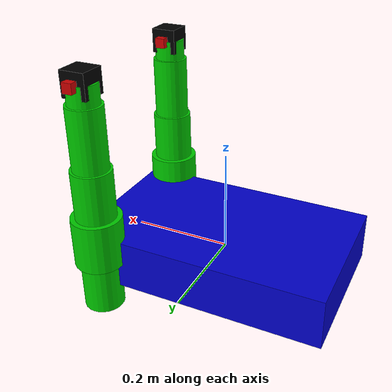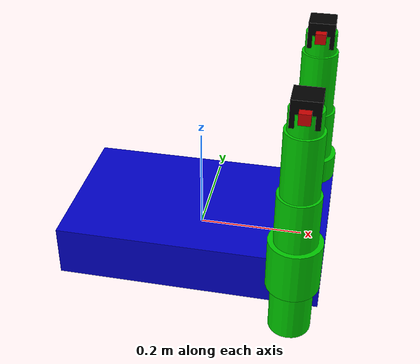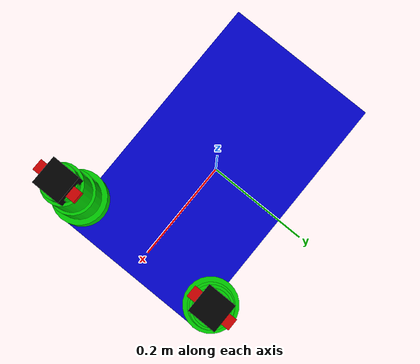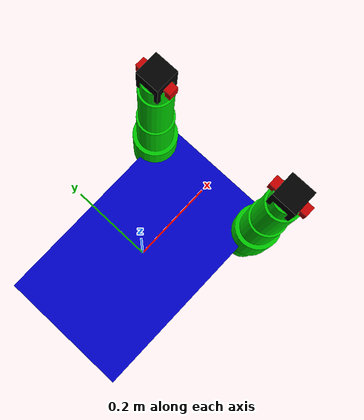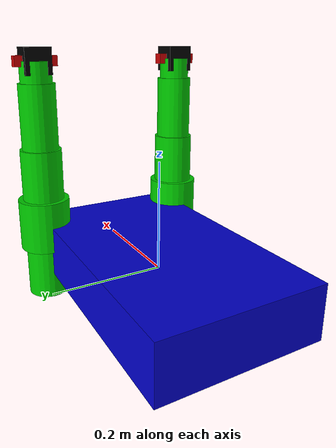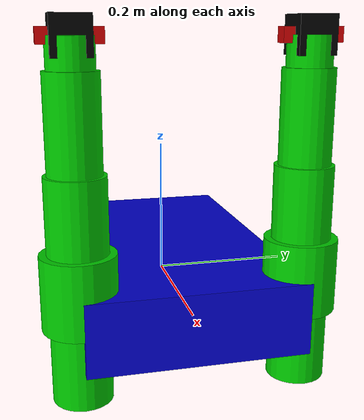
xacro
<?xml version="1.0"?>
<robot xmlns:xacro="http://www.ros.org/wiki/xacro" name="so101_dual_arm">

  <!-- Material definitions -->
  <material name="blue">
    <color rgba="0 0 0.8 1"/>
  </material>
  <material name="green">
    <color rgba="0 0.8 0 1"/>
  </material>
  <material name="red">
    <color rgba="0.8 0 0 1"/>
  </material>
  <material name="white">
    <color rgba="1 1 1 1"/>
  </material>
  <material name="black">
    <color rgba="0 0 0 1"/>
  </material>

  <!-- Base link -->
  <link name="base_link">
    <visual>
      <geometry>
        <box size="0.5 0.3 0.1"/>
      </geometry>
      <material name="blue"/>
    </visual>
    <collision>
      <geometry>
        <box size="0.5 0.3 0.1"/>
      </geometry>
    </collision>
    <inertial>
      <mass value="10.0"/>
      <inertia ixx="0.1" ixy="0" ixz="0" iyy="0.1" iyz="0" izz="0.1"/>
    </inertial>
  </link>

  <!-- Left Arm -->
  <link name="left_shoulder_link">
    <visual>
      <geometry>
        <cylinder radius="0.05" length="0.1"/>
      </geometry>
      <material name="green"/>
    </visual>
    <collision>
      <geometry>
        <cylinder radius="0.05" length="0.1"/>
      </geometry>
    </collision>
    <inertial>
      <mass value="1.0"/>
      <inertia ixx="0.01" ixy="0" ixz="0" iyy="0.01" iyz="0" izz="0.01"/>
    </inertial>
  </link>

  <joint name="left_shoulder_pitch" type="revolute">
    <parent link="base_link"/>
    <child link="left_shoulder_link"/>
    <origin xyz="0.2 0.15 0.05" rpy="0 0 0"/>
    <axis xyz="0 1 0"/>
    <limit lower="-3.14" upper="3.14" effort="100" velocity="1.0"/>
  </joint>

  <link name="left_upper_arm_link">
    <visual>
      <geometry>
        <cylinder radius="0.04" length="0.3"/>
      </geometry>
      <material name="green"/>
    </visual>
    <collision>
      <geometry>
        <cylinder radius="0.04" length="0.3"/>
      </geometry>
    </collision>
    <inertial>
      <mass value="2.0"/>
      <inertia ixx="0.02" ixy="0" ixz="0" iyy="0.02" iyz="0" izz="0.02"/>
    </inertial>
  </link>

  <joint name="left_shoulder_roll" type="revolute">
    <parent link="left_shoulder_link"/>
    <child link="left_upper_arm_link"/>
    <origin xyz="0 0 0" rpy="0 0 0"/>
    <axis xyz="1 0 0"/>
    <limit lower="-3.14" upper="3.14" effort="100" velocity="1.0"/>
  </joint>

  <link name="left_forearm_link">
    <visual>
      <geometry>
        <cylinder radius="0.035" length="0.25"/>
      </geometry>
      <material name="green"/>
    </visual>
    <collision>
      <geometry>
        <cylinder radius="0.035" length="0.25"/>
      </geometry>
    </collision>
    <inertial>
      <mass value="1.5"/>
      <inertia ixx="0.015" ixy="0" ixz="0" iyy="0.015" iyz="0" izz="0.015"/>
    </inertial>
  </link>

  <joint name="left_elbow_pitch" type="revolute">
    <parent link="left_upper_arm_link"/>
    <child link="left_forearm_link"/>
    <origin xyz="0 0 0.15" rpy="0 0 0"/>
    <axis xyz="0 1 0"/>
    <limit lower="-3.14" upper="3.14" effort="100" velocity="1.0"/>
  </joint>

  <link name="left_wrist_link">
    <visual>
      <geometry>
        <cylinder radius="0.03" length="0.08"/>
      </geometry>
      <material name="green"/>
    </visual>
    <collision>
      <geometry>
        <cylinder radius="0.03" length="0.08"/>
      </geometry>
    </collision>
    <inertial>
      <mass value="0.5"/>
      <inertia ixx="0.005" ixy="0" ixz="0" iyy="0.005" iyz="0" izz="0.005"/>
    </inertial>
  </link>

  <joint name="left_wrist_pitch" type="revolute">
    <parent link="left_forearm_link"/>
    <child link="left_wrist_link"/>
    <origin xyz="0 0 0.125" rpy="0 0 0"/>
    <axis xyz="0 1 0"/>
    <limit lower="-3.14" upper="3.14" effort="50" velocity="1.0"/>
  </joint>

  <link name="left_gripper_link">
    <visual>
      <geometry>
        <box size="0.02 0.08 0.02"/>
      </geometry>
      <material name="red"/>
    </visual>
    <collision>
      <geometry>
        <box size="0.02 0.08 0.02"/>
      </geometry>
    </collision>
    <inertial>
      <mass value="0.2"/>
      <inertia ixx="0.001" ixy="0" ixz="0" iyy="0.001" iyz="0" izz="0.001"/>
    </inertial>
  </link>

  <joint name="left_gripper" type="prismatic">
    <parent link="left_wrist_link"/>
    <child link="left_gripper_link"/>
    <origin xyz="0 0 0.04" rpy="0 0 0"/>
    <axis xyz="0 0 1"/>
    <limit lower="0" upper="0.08" effort="50" velocity="0.1"/>
  </joint>

  <!-- Right Arm -->
  <link name="right_shoulder_link">
    <visual>
      <geometry>
        <cylinder radius="0.05" length="0.1"/>
      </geometry>
      <material name="green"/>
    </visual>
    <collision>
      <geometry>
        <cylinder radius="0.05" length="0.1"/>
      </geometry>
    </collision>
    <inertial>
      <mass value="1.0"/>
      <inertia ixx="0.01" ixy="0" ixz="0" iyy="0.01" iyz="0" izz="0.01"/>
    </inertial>
  </link>

  <joint name="right_shoulder_pitch" type="revolute">
    <parent link="base_link"/>
    <child link="right_shoulder_link"/>
    <origin xyz="0.2 -0.15 0.05" rpy="0 0 0"/>
    <axis xyz="0 1 0"/>
    <limit lower="-3.14" upper="3.14" effort="100" velocity="1.0"/>
  </joint>

  <link name="right_upper_arm_link">
    <visual>
      <geometry>
        <cylinder radius="0.04" length="0.3"/>
      </geometry>
      <material name="green"/>
    </visual>
    <collision>
      <geometry>
        <cylinder radius="0.04" length="0.3"/>
      </geometry>
    </collision>
    <inertial>
      <mass value="2.0"/>
      <inertia ixx="0.02" ixy="0" ixz="0" iyy="0.02" iyz="0" izz="0.02"/>
    </inertial>
  </link>

  <joint name="right_shoulder_roll" type="revolute">
    <parent link="right_shoulder_link"/>
    <child link="right_upper_arm_link"/>
    <origin xyz="0 0 0" rpy="0 0 0"/>
    <axis xyz="1 0 0"/>
    <limit lower="-3.14" upper="3.14" effort="100" velocity="1.0"/>
  </joint>

  <link name="right_forearm_link">
    <visual>
      <geometry>
        <cylinder radius="0.035" length="0.25"/>
      </geometry>
      <material name="green"/>
    </visual>
    <collision>
      <geometry>
        <cylinder radius="0.035" length="0.25"/>
      </geometry>
    </collision>
    <inertial>
      <mass value="1.5"/>
      <inertia ixx="0.015" ixy="0" ixz="0" iyy="0.015" iyz="0" izz="0.015"/>
    </inertial>
  </link>

  <joint name="right_elbow_pitch" type="revolute">
    <parent link="right_upper_arm_link"/>
    <child link="right_forearm_link"/>
    <origin xyz="0 0 0.15" rpy="0 0 0"/>
    <axis xyz="0 1 0"/>
    <limit lower="-3.14" upper="3.14" effort="100" velocity="1.0"/>
  </joint>

  <link name="right_wrist_link">
    <visual>
      <geometry>
        <cylinder radius="0.03" length="0.08"/>
      </geometry>
      <material name="green"/>
    </visual>
    <collision>
      <geometry>
        <cylinder radius="0.03" length="0.08"/>
      </geometry>
    </collision>
    <inertial>
      <mass value="0.5"/>
      <inertia ixx="0.005" ixy="0" ixz="0" iyy="0.005" iyz="0" izz="0.005"/>
    </inertial>
  </link>

  <joint name="right_wrist_pitch" type="revolute">
    <parent link="right_forearm_link"/>
    <child link="right_wrist_link"/>
    <origin xyz="0 0 0.125" rpy="0 0 0"/>
    <axis xyz="0 1 0"/>
    <limit lower="-3.14" upper="3.14" effort="50" velocity="1.0"/>
  </joint>

  <link name="right_gripper_link">
    <visual>
      <geometry>
        <box size="0.02 0.08 0.02"/>
      </geometry>
      <material name="red"/>
    </visual>
    <collision>
      <geometry>
        <box size="0.02 0.08 0.02"/>
      </geometry>
    </collision>
    <inertial>
      <mass value="0.2"/>
      <inertia ixx="0.001" ixy="0" ixz="0" iyy="0.001" iyz="0" izz="0.001"/>
    </inertial>
  </link>

  <joint name="right_gripper" type="prismatic">
    <parent link="right_wrist_link"/>
    <child link="right_gripper_link"/>
    <origin xyz="0 0 0.04" rpy="0 0 0"/>
    <axis xyz="0 0 1"/>
    <limit lower="0" upper="0.08" effort="50" velocity="0.1"/>
  </joint>

  <!-- Cameras -->
  <link name="left_camera_link">
    <visual>
      <geometry>
        <box size="0.05 0.05 0.05"/>
      </geometry>
      <material name="black"/>
    </visual>
    <collision>
      <geometry>
        <box size="0.05 0.05 0.05"/>
      </geometry>
    </collision>
    <inertial>
      <mass value="0.1"/>
      <inertia ixx="0.001" ixy="0" ixz="0" iyy="0.001" iyz="0" izz="0.001"/>
    </inertial>
  </link>

  <joint name="left_camera_joint" type="fixed">
    <parent link="left_wrist_link"/>
    <child link="left_camera_link"/>
    <origin xyz="0 0 0.04" rpy="0 0 0"/>
  </joint>

  <link name="right_camera_link">
    <visual>
      <geometry>
        <box size="0.05 0.05 0.05"/>
      </geometry>
      <material name="black"/>
    </visual>
    <collision>
      <geometry>
        <box size="0.05 0.05 0.05"/>
      </geometry>
    </collision>
    <inertial>
      <mass value="0.1"/>
      <inertia ixx="0.001" ixy="0" ixz="0" iyy="0.001" iyz="0" izz="0.001"/>
    </inertial>
  </link>

  <joint name="right_camera_joint" type="fixed">
    <parent link="right_wrist_link"/>
    <child link="right_camera_link"/>
    <origin xyz="0 0 0.04" rpy="0 0 0"/>
  </joint>

  <!-- Gazebo plugins -->
  <gazebo>
    <plugin name="gazebo_ros2_control" filename="libgazebo_ros2_control.so">
      <parameters>$(find so101_sim)/config/controllers.yaml</parameters>
    </plugin>
  </gazebo>

  <gazebo reference="left_camera_link">
    <sensor type="camera" name="left_camera">
      <update_rate>30.0</update_rate>
      <camera name="head">
        <horizontal_fov>1.3962634</horizontal_fov>
        <image>
          <width>640</width>
          <height>480</height>
          <format>R8G8B8</format>
        </image>
        <clip>
          <near>0.02</near>
          <far>300</far>
        </clip>
        <noise>
          <type>gaussian</type>
          <mean>0.0</mean>
          <stddev>0.007</stddev>
        </noise>
      </camera>
      <plugin name="camera_controller" filename="libgazebo_ros_camera.so">
        <alwaysOn>true</alwaysOn>
        <updateRate>0.0</updateRate>
        <cameraName>left_camera</cameraName>
        <imageTopicName>image_raw</imageTopicName>
        <cameraInfoTopicName>camera_info</cameraInfoTopicName>
        <frameName>left_camera_link</frameName>
        <minAngle>0.0</minAngle>
        <maxAngle>0.0</maxAngle>
        <gaussianNoise>0.0</gaussianNoise>
        <distortionK1>0.0</distortionK1>
        <distortionK2>0.0</distortionK2>
        <distortionK3>0.0</distortionK3>
        <distortionT1>0.0</distortionT1>
        <distortionT2>0.0</distortionT2>
      </plugin>
    </sensor>
  </gazebo>

  <gazebo reference="right_camera_link">
    <sensor type="camera" name="right_camera">
      <update_rate>30.0</update_rate>
      <camera name="head">
        <horizontal_fov>1.3962634</horizontal_fov>
        <image>
          <width>640</width>
          <height>480</height>
          <format>R8G8B8</format>
        </image>
        <clip>
          <near>0.02</near>
          <far>300</far>
        </clip>
        <noise>
          <type>gaussian</type>
          <mean>0.0</mean>
          <stddev>0.007</stddev>
        </noise>
      </camera>
      <plugin name="camera_controller" filename="libgazebo_ros_camera.so">
        <alwaysOn>true</alwaysOn>
        <updateRate>0.0</updateRate>
        <cameraName>right_camera</cameraName>
        <imageTopicName>image_raw</imageTopicName>
        <cameraInfoTopicName>camera_info</cameraInfoTopicName>
        <frameName>right_camera_link</frameName>
        <minAngle>0.0</minAngle>
        <maxAngle>0.0</maxAngle>
        <gaussianNoise>0.0</gaussianNoise>
        <distortionK1>0.0</distortionK1>
        <distortionK2>0.0</distortionK2>
        <distortionK3>0.0</distortionK3>
        <distortionT1>0.0</distortionT1>
        <distortionT2>0.0</distortionT2>
      </plugin>
    </sensor>
  </gazebo>

</robot>
